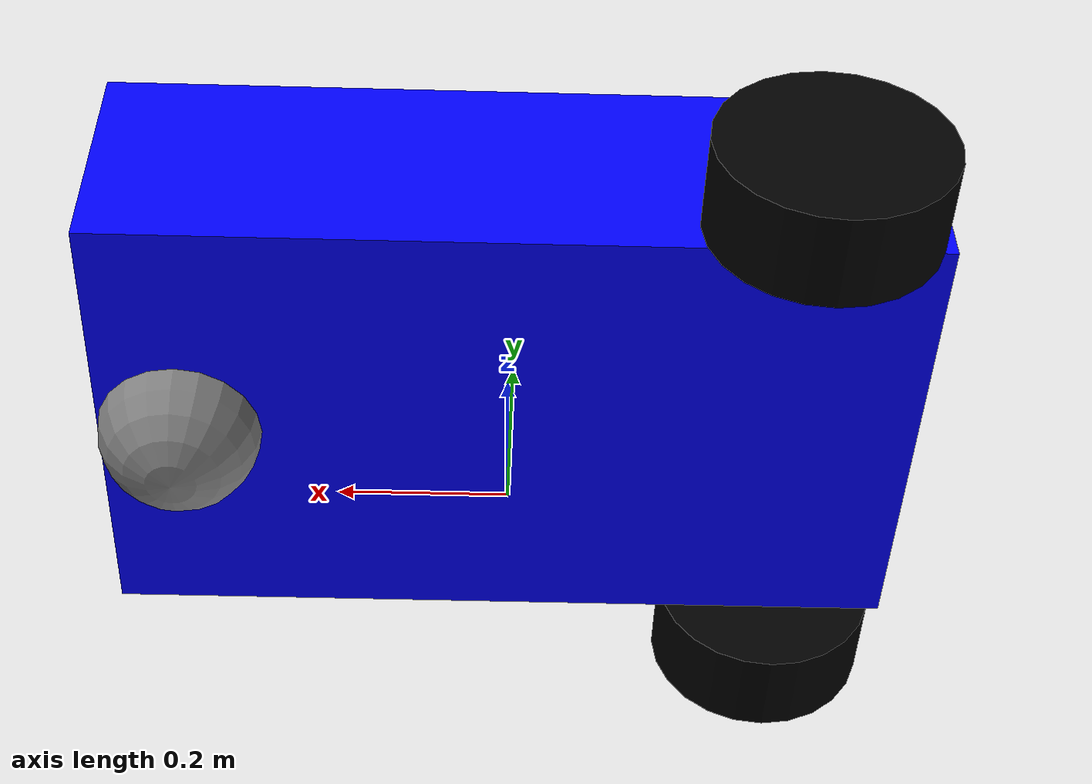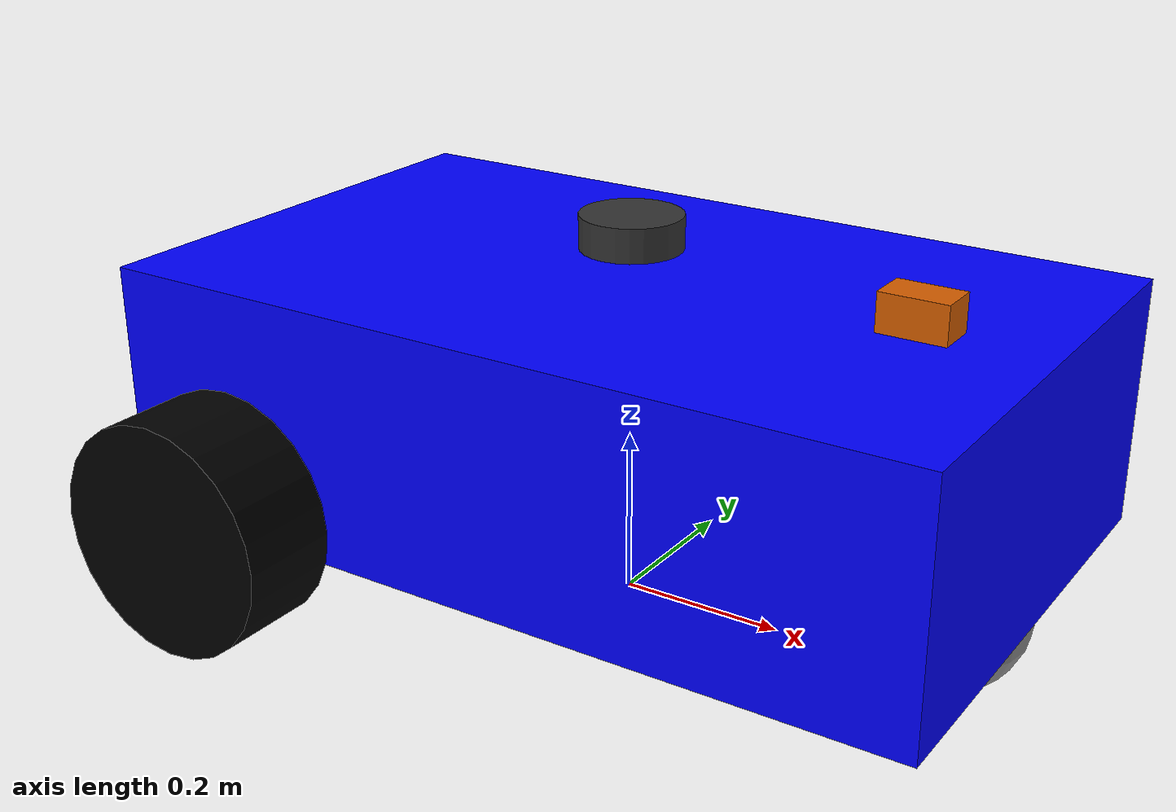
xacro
<?xml version="1.0"?>

<robot xmlns:xacro="http://www.ros.org/wiki/xacro"
       name="mobile_robot">

  <!-- BASE FOOTPRINT -->

  <!-- BASE BODY -->

  <link name="base_link">

    <visual>

      <origin xyz="0 0 0.25"
              rpy="0 0 0"/>

      <geometry>
        <box size="1.0 0.6 0.3"/>
      </geometry>

      <material name="blue">
        <color rgba="0 0 1 1"/>
      </material>

    </visual>

    <collision>

      <origin xyz="0 0 0.25"
              rpy="0 0 0"/>

      <geometry>
        <box size="1.0 0.6 0.3"/>
      </geometry>

    </collision>

    <inertial>

      <origin xyz="0 0 0.25"
              rpy="0 0 0"/>

      <mass value="5"/>

      <inertia
        ixx="0.1"
        ixy="0"
        ixz="0"
        iyy="0.1"
        iyz="0"
        izz="0.1"/>

    </inertial>

  </link>

  <!-- BASE JOINT -->

  <!-- LEFT REAR WHEEL -->

  <link name="left_wheel_link">

    <visual>

      <origin xyz="0 0 0"
              rpy="1.5708 0 0"/>

      <geometry>
        <cylinder radius="0.14"
                  length="0.12"/>
      </geometry>

      <material name="black">
        <color rgba="0 0 0 1"/>
      </material>

    </visual>

    <collision>

      <origin xyz="0 0 0"
              rpy="1.5708 0 0"/>

      <geometry>
        <cylinder radius="0.14"
                  length="0.12"/>
      </geometry>

    </collision>

    <inertial>

      <mass value="1"/>

      <inertia
        ixx="0.01"
        ixy="0"
        ixz="0"
        iyy="0.01"
        iyz="0"
        izz="0.01"/>

    </inertial>

  </link>

  <!-- LEFT WHEEL JOINT -->

  <joint name="left_wheel_joint"
         type="continuous">

    <parent link="base_link"/>

    <child link="left_wheel_link"/>

    <origin xyz="-0.35 0.36 0.14"
            rpy="0 0 0"/>

    <axis xyz="0 1 0"/>

  </joint>

  <!-- RIGHT REAR WHEEL -->

  <link name="right_wheel_link">

    <visual>

      <origin xyz="0 0 0"
              rpy="1.5708 0 0"/>

      <geometry>
        <cylinder radius="0.14"
                  length="0.12"/>
      </geometry>

      <material name="black">
        <color rgba="0 0 0 1"/>
      </material>

    </visual>

    <collision>

      <origin xyz="0 0 0"
              rpy="1.5708 0 0"/>

      <geometry>
        <cylinder radius="0.14"
                  length="0.12"/>
      </geometry>

    </collision>

    <inertial>

      <mass value="1"/>

      <inertia
        ixx="0.01"
        ixy="0"
        ixz="0"
        iyy="0.01"
        iyz="0"
        izz="0.01"/>

    </inertial>

  </link>

  <!-- RIGHT WHEEL JOINT -->

  <joint name="right_wheel_joint"
         type="continuous">

    <parent link="base_link"/>

    <child link="right_wheel_link"/>

    <origin xyz="-0.35 -0.36 0.14"
            rpy="0 0 0"/>

    <axis xyz="0 1 0"/>

  </joint>

  <!-- FRONT CASTER -->

  <link name="caster_wheel_link">

    <visual>

      <geometry>
        <sphere radius="0.10"/>
      </geometry>

      <material name="gray">
        <color rgba="0.5 0.5 0.5 1"/>
      </material>

    </visual>

    <collision>

      <geometry>
        <sphere radius="0.10"/>
      </geometry>

    </collision>

    <inertial>

      <mass value="0.2"/>

      <inertia
        ixx="0.001"
        ixy="0"
        ixz="0"
        iyy="0.001"
        iyz="0"
        izz="0.001"/>

    </inertial>

  </link>

  <!-- CASTER JOINT -->

  <joint name="caster_wheel_joint"
         type="fixed">

    <parent link="base_link"/>

    <child link="caster_wheel_link"/>

    <origin xyz="0.40 0 0.10"
            rpy="0 0 0"/>

  </joint>

  <!-- LIDAR -->

  <link name="lidar_link">

    <visual>

      <origin xyz="0 0 0"
              rpy="0 0 0"/>

      <geometry>
        <cylinder radius="0.06"
                  length="0.04"/>
      </geometry>

      <material name="lidar_gray">
        <color rgba="0.2 0.2 0.2 1"/>
      </material>

    </visual>

    <inertial>

      <mass value="0.1"/>

      <inertia
        ixx="0.0001"
        ixy="0"
        ixz="0"
        iyy="0.0001"
        iyz="0"
        izz="0.0001"/>

    </inertial>

  </link>

  <!-- LIDAR JOINT -->

  <joint name="lidar_joint"
         type="fixed">

    <parent link="base_link"/>

    <child link="lidar_link"/>

     <origin xyz="0 0 0.45"
        rpy="0 0 0"/>

  </joint>
<!-- ================= CAMERA ================= -->

<link name="camera_link">

  <visual>
    <geometry>
      <box size="0.08 0.05 0.05"/>
    </geometry>
  </visual>

  <collision>
    <geometry>
      <box size="0.08 0.05 0.05"/>
    </geometry>
  </collision>

  <inertial>
    <mass value="0.05"/>
    <inertia
      ixx="0.0001"
      ixy="0"
      ixz="0"
      iyy="0.0001"
      iyz="0"
      izz="0.0001"/>
  </inertial>

</link>

<joint name="camera_joint" type="fixed">
  <parent link="base_link"/>
  <child link="camera_link"/>
  <origin xyz="0.35 0 0.42" rpy="0 0 0"/>
</joint>
<!-- ================= CAMERA SENSOR ================= -->

<gazebo reference="camera_link">

  <sensor type="camera" name="camera_sensor">

    <always_on>true</always_on>
    <update_rate>30</update_rate>
    <visualize>true</visualize>

    <camera>
      <horizontal_fov>1.047</horizontal_fov>

      <image>
        <width>640</width>
        <height>480</height>
        <format>R8G8B8</format>
      </image>

      <clip>
        <near>0.1</near>
        <far>20.0</far>
      </clip>
    </camera>

    <plugin
      name="gazebo_ros_camera"
      filename="libgazebo_ros_camera.so">

      <ros>
        <remapping>image_raw:=camera/image_raw</remapping>
        <remapping>camera_info:=camera/camera_info</remapping>
      </ros>

      <camera_name>camera</camera_name>
      <frame_name>camera_link</frame_name>

    </plugin>

  </sensor>

</gazebo>

  <!-- GAZEBO CONFIGURATION -->

  <xacro:include filename="$(find robot_description)/model/robot.gazebo"/>
<!-- ================= LIDAR ================= -->

<gazebo>
  <plugin
    name="gazebo_ros_joint_state_publisher"
    filename="libgazebo_ros_joint_state_publisher.so">

    <update_rate>50</update_rate>

    <joint_name>left_wheel_joint</joint_name>
    <joint_name>right_wheel_joint</joint_name>

  </plugin>
</gazebo>

</robot>
